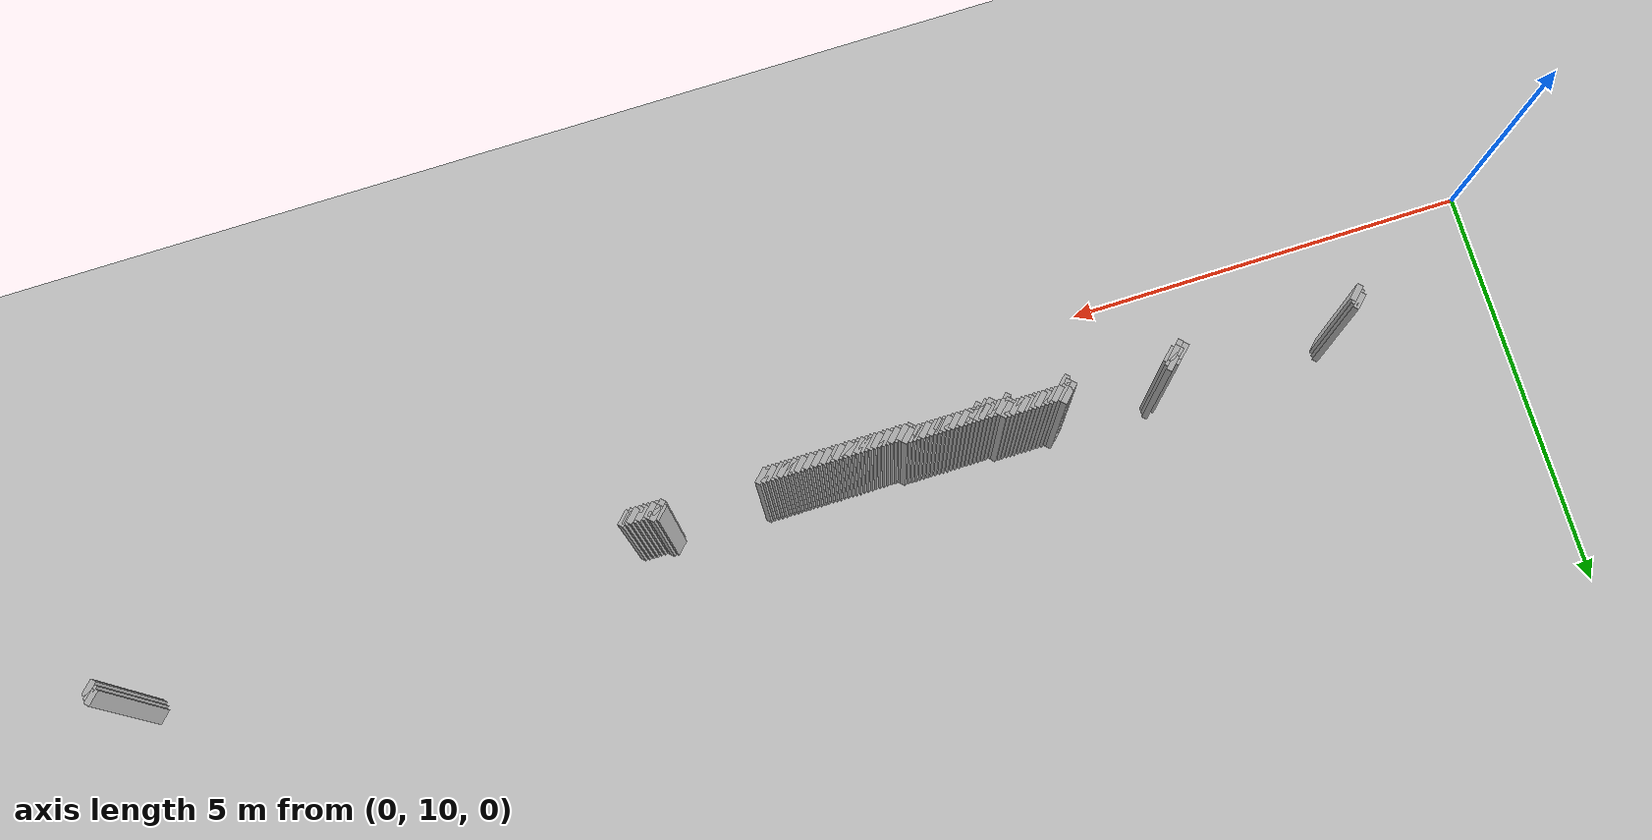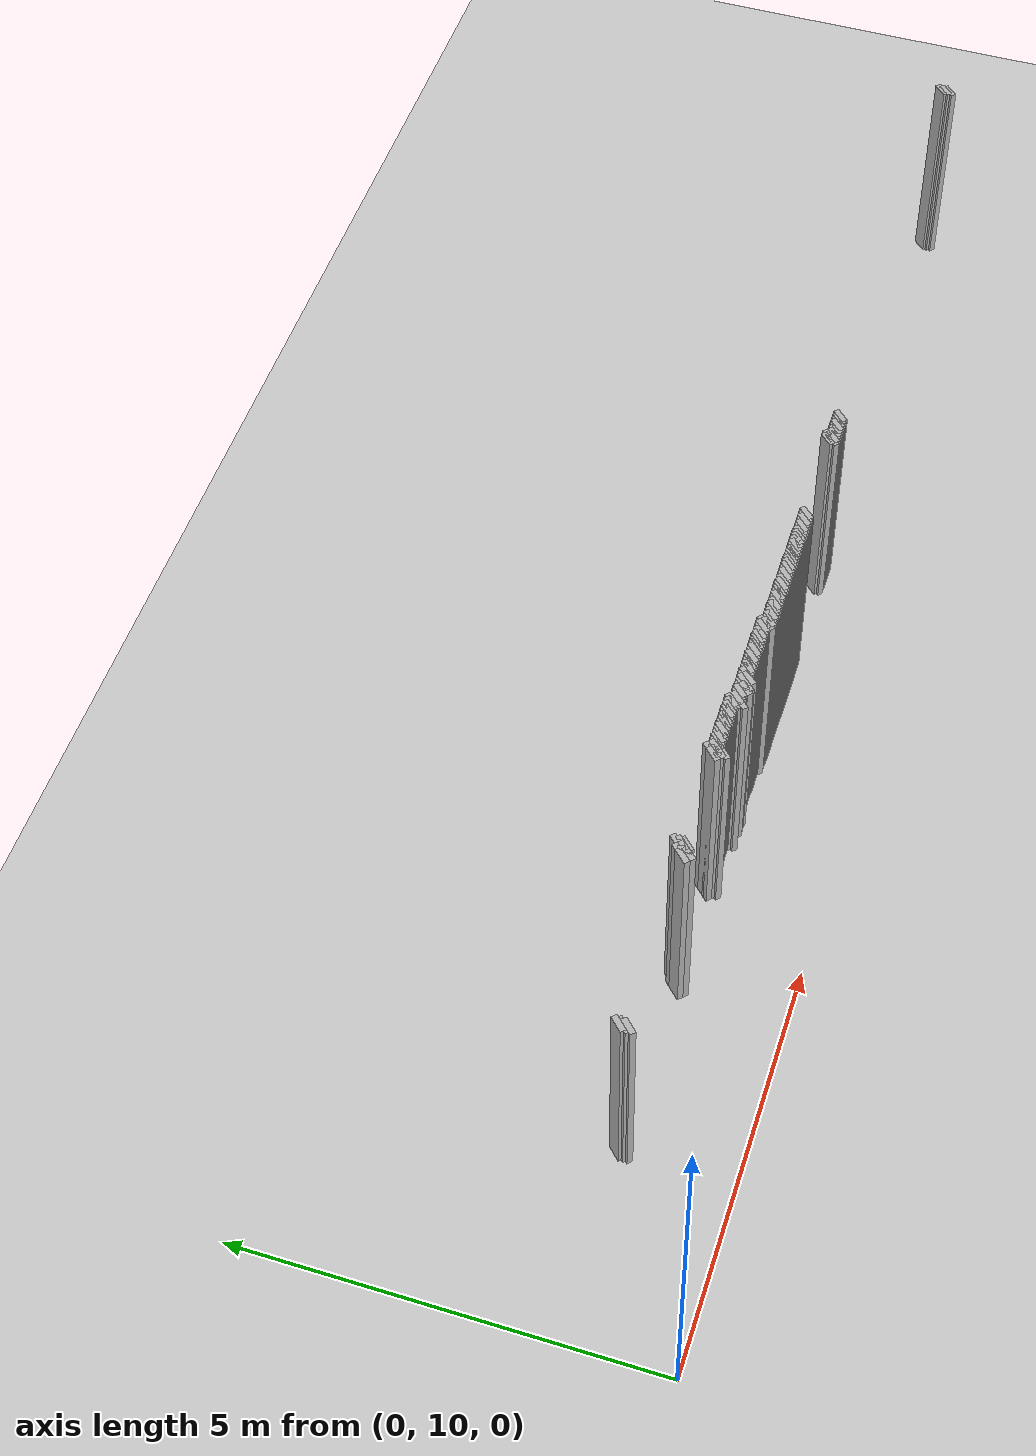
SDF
<sdf version="1.5">
 <world name="default">
  <include><uri>model://ground_plane</uri></include>
  <include><uri>model://sun</uri></include>
  <model name="grey_wall_1162">
   <static>1</static>
   <link name="link">
    <pose>4.5 11.4  1.4 0 0 -0.7853981633974483</pose>
    <collision name="collision">
     <geometry><box><size>0.07071067811865576 .2  2.8</size></box></geometry>
    </collision>
    <visual name="visual">
     <cast_shadows>0</cast_shadows>
     <geometry><box><size>0.07071067811865576 .2  2.8</size></box></geometry>
    </visual>
   </link>
  </model>
  <model name="grey_wall_1163">
   <static>1</static>
   <link name="link">
    <pose>5.75 11.4  1.4 0 0 -0.7853981633974483</pose>
    <collision name="collision">
     <geometry><box><size>0.07071067811865576 .2  2.8</size></box></geometry>
    </collision>
    <visual name="visual">
     <cast_shadows>0</cast_shadows>
     <geometry><box><size>0.07071067811865576 .2  2.8</size></box></geometry>
    </visual>
   </link>
  </model>
  <model name="grey_wall_1164">
   <static>1</static>
   <link name="link">
    <pose>17.05 11.4  1.4 0 0 -0.7853981633974838</pose>
    <collision name="collision">
     <geometry><box><size>0.07071067811865325 .2  2.8</size></box></geometry>
    </collision>
    <visual name="visual">
     <cast_shadows>0</cast_shadows>
     <geometry><box><size>0.07071067811865325 .2  2.8</size></box></geometry>
    </visual>
   </link>
  </model>
  <model name="grey_wall_1165">
   <static>1</static>
   <link name="link">
    <pose>2.25 11.350000000000001  1.4 0 0 -0.7853981633974572</pose>
    <collision name="collision">
     <geometry><box><size>0.07071067811865513 .2  2.8</size></box></geometry>
    </collision>
    <visual name="visual">
     <cast_shadows>0</cast_shadows>
     <geometry><box><size>0.07071067811865513 .2  2.8</size></box></geometry>
    </visual>
   </link>
  </model>
  <model name="grey_wall_1166">
   <static>1</static>
   <link name="link">
    <pose>4.4 11.350000000000001  1.4 0 0 -0.7853981633974483</pose>
    <collision name="collision">
     <geometry><box><size>0.07071067811865576 .2  2.8</size></box></geometry>
    </collision>
    <visual name="visual">
     <cast_shadows>0</cast_shadows>
     <geometry><box><size>0.07071067811865576 .2  2.8</size></box></geometry>
    </visual>
   </link>
  </model>
  <model name="grey_wall_1167">
   <static>1</static>
   <link name="link">
    <pose>4.5 11.350000000000001  1.4 0 0 -0.7853981633974483</pose>
    <collision name="collision">
     <geometry><box><size>0.07071067811865576 .2  2.8</size></box></geometry>
    </collision>
    <visual name="visual">
     <cast_shadows>0</cast_shadows>
     <geometry><box><size>0.07071067811865576 .2  2.8</size></box></geometry>
    </visual>
   </link>
  </model>
  <model name="grey_wall_1168">
   <static>1</static>
   <link name="link">
    <pose>5.7 11.350000000000001  1.4 0 0 -0.7853981633974483</pose>
    <collision name="collision">
     <geometry><box><size>0.07071067811865576 .2  2.8</size></box></geometry>
    </collision>
    <visual name="visual">
     <cast_shadows>0</cast_shadows>
     <geometry><box><size>0.07071067811865576 .2  2.8</size></box></geometry>
    </visual>
   </link>
  </model>
  <model name="grey_wall_1169">
   <static>1</static>
   <link name="link">
    <pose>5.75 11.350000000000001  1.4 0 0 -0.7853981633974483</pose>
    <collision name="collision">
     <geometry><box><size>0.07071067811865576 .2  2.8</size></box></geometry>
    </collision>
    <visual name="visual">
     <cast_shadows>0</cast_shadows>
     <geometry><box><size>0.07071067811865576 .2  2.8</size></box></geometry>
    </visual>
   </link>
  </model>
  <model name="grey_wall_1170">
   <static>1</static>
   <link name="link">
    <pose>5.800000000000001 11.350000000000001  1.4 0 0 -0.7853981633974483</pose>
    <collision name="collision">
     <geometry><box><size>0.07071067811865576 .2  2.8</size></box></geometry>
    </collision>
    <visual name="visual">
     <cast_shadows>0</cast_shadows>
     <geometry><box><size>0.07071067811865576 .2  2.8</size></box></geometry>
    </visual>
   </link>
  </model>
  <model name="grey_wall_1171">
   <static>1</static>
   <link name="link">
    <pose>5.8500000000000005 11.350000000000001  1.4 0 0 -0.7853981633974483</pose>
    <collision name="collision">
     <geometry><box><size>0.07071067811865576 .2  2.8</size></box></geometry>
    </collision>
    <visual name="visual">
     <cast_shadows>0</cast_shadows>
     <geometry><box><size>0.07071067811865576 .2  2.8</size></box></geometry>
    </visual>
   </link>
  </model>
  <model name="grey_wall_1172">
   <static>1</static>
   <link name="link">
    <pose>5.9 11.350000000000001  1.4 0 0 -0.7853981633974483</pose>
    <collision name="collision">
     <geometry><box><size>0.07071067811865576 .2  2.8</size></box></geometry>
    </collision>
    <visual name="visual">
     <cast_shadows>0</cast_shadows>
     <geometry><box><size>0.07071067811865576 .2  2.8</size></box></geometry>
    </visual>
   </link>
  </model>
  <model name="grey_wall_1173">
   <static>1</static>
   <link name="link">
    <pose>5.95 11.350000000000001  1.4 0 0 -0.7853981633974483</pose>
    <collision name="collision">
     <geometry><box><size>0.07071067811865576 .2  2.8</size></box></geometry>
    </collision>
    <visual name="visual">
     <cast_shadows>0</cast_shadows>
     <geometry><box><size>0.07071067811865576 .2  2.8</size></box></geometry>
    </visual>
   </link>
  </model>
  <model name="grey_wall_1174">
   <static>1</static>
   <link name="link">
    <pose>6.0 11.350000000000001  1.4 0 0 -0.7853981633974483</pose>
    <collision name="collision">
     <geometry><box><size>0.07071067811865576 .2  2.8</size></box></geometry>
    </collision>
    <visual name="visual">
     <cast_shadows>0</cast_shadows>
     <geometry><box><size>0.07071067811865576 .2  2.8</size></box></geometry>
    </visual>
   </link>
  </model>
  <model name="grey_wall_1175">
   <static>1</static>
   <link name="link">
    <pose>6.050000000000001 11.350000000000001  1.4 0 0 -0.7853981633974483</pose>
    <collision name="collision">
     <geometry><box><size>0.07071067811865576 .2  2.8</size></box></geometry>
    </collision>
    <visual name="visual">
     <cast_shadows>0</cast_shadows>
     <geometry><box><size>0.07071067811865576 .2  2.8</size></box></geometry>
    </visual>
   </link>
  </model>
  <model name="grey_wall_1176">
   <static>1</static>
   <link name="link">
    <pose>6.1000000000000005 11.350000000000001  1.4 0 0 -0.7853981633974483</pose>
    <collision name="collision">
     <geometry><box><size>0.07071067811865576 .2  2.8</size></box></geometry>
    </collision>
    <visual name="visual">
     <cast_shadows>0</cast_shadows>
     <geometry><box><size>0.07071067811865576 .2  2.8</size></box></geometry>
    </visual>
   </link>
  </model>
  <model name="grey_wall_1177">
   <static>1</static>
   <link name="link">
    <pose>6.15 11.350000000000001  1.4 0 0 -0.7853981633974483</pose>
    <collision name="collision">
     <geometry><box><size>0.07071067811865576 .2  2.8</size></box></geometry>
    </collision>
    <visual name="visual">
     <cast_shadows>0</cast_shadows>
     <geometry><box><size>0.07071067811865576 .2  2.8</size></box></geometry>
    </visual>
   </link>
  </model>
  <model name="grey_wall_1178">
   <static>1</static>
   <link name="link">
    <pose>6.2 11.350000000000001  1.4 0 0 -0.7853981633974483</pose>
    <collision name="collision">
     <geometry><box><size>0.07071067811865576 .2  2.8</size></box></geometry>
    </collision>
    <visual name="visual">
     <cast_shadows>0</cast_shadows>
     <geometry><box><size>0.07071067811865576 .2  2.8</size></box></geometry>
    </visual>
   </link>
  </model>
  <model name="grey_wall_1179">
   <static>1</static>
   <link name="link">
    <pose>6.25 11.350000000000001  1.4 0 0 -0.7853981633974483</pose>
    <collision name="collision">
     <geometry><box><size>0.07071067811865576 .2  2.8</size></box></geometry>
    </collision>
    <visual name="visual">
     <cast_shadows>0</cast_shadows>
     <geometry><box><size>0.07071067811865576 .2  2.8</size></box></geometry>
    </visual>
   </link>
  </model>
  <model name="grey_wall_1180">
   <static>1</static>
   <link name="link">
    <pose>6.300000000000001 11.350000000000001  1.4 0 0 -0.7853981633974483</pose>
    <collision name="collision">
     <geometry><box><size>0.07071067811865576 .2  2.8</size></box></geometry>
    </collision>
    <visual name="visual">
     <cast_shadows>0</cast_shadows>
     <geometry><box><size>0.07071067811865576 .2  2.8</size></box></geometry>
    </visual>
   </link>
  </model>
  <model name="grey_wall_1181">
   <static>1</static>
   <link name="link">
    <pose>6.3500000000000005 11.350000000000001  1.4 0 0 -0.7853981633974483</pose>
    <collision name="collision">
     <geometry><box><size>0.07071067811865576 .2  2.8</size></box></geometry>
    </collision>
    <visual name="visual">
     <cast_shadows>0</cast_shadows>
     <geometry><box><size>0.07071067811865576 .2  2.8</size></box></geometry>
    </visual>
   </link>
  </model>
  <model name="grey_wall_1182">
   <static>1</static>
   <link name="link">
    <pose>6.4 11.350000000000001  1.4 0 0 -0.7853981633974483</pose>
    <collision name="collision">
     <geometry><box><size>0.07071067811865576 .2  2.8</size></box></geometry>
    </collision>
    <visual name="visual">
     <cast_shadows>0</cast_shadows>
     <geometry><box><size>0.07071067811865576 .2  2.8</size></box></geometry>
    </visual>
   </link>
  </model>
  <model name="grey_wall_1183">
   <static>1</static>
   <link name="link">
    <pose>6.45 11.350000000000001  1.4 0 0 -0.7853981633974483</pose>
    <collision name="collision">
     <geometry><box><size>0.07071067811865576 .2  2.8</size></box></geometry>
    </collision>
    <visual name="visual">
     <cast_shadows>0</cast_shadows>
     <geometry><box><size>0.07071067811865576 .2  2.8</size></box></geometry>
    </visual>
   </link>
  </model>
  <model name="grey_wall_1184">
   <static>1</static>
   <link name="link">
    <pose>17.05 11.350000000000001  1.4 0 0 -0.7853981633974838</pose>
    <collision name="collision">
     <geometry><box><size>0.07071067811865325 .2  2.8</size></box></geometry>
    </collision>
    <visual name="visual">
     <cast_shadows>0</cast_shadows>
     <geometry><box><size>0.07071067811865325 .2  2.8</size></box></geometry>
    </visual>
   </link>
  </model>
  <model name="grey_wall_1185">
   <static>1</static>
   <link name="link">
    <pose>2.25 11.3  1.4 0 0 -0.7853981633974572</pose>
    <collision name="collision">
     <geometry><box><size>0.07071067811865513 .2  2.8</size></box></geometry>
    </collision>
    <visual name="visual">
     <cast_shadows>0</cast_shadows>
     <geometry><box><size>0.07071067811865513 .2  2.8</size></box></geometry>
    </visual>
   </link>
  </model>
  <model name="grey_wall_1186">
   <static>1</static>
   <link name="link">
    <pose>4.3500000000000005 11.3  1.4 0 0 -0.7853981633974483</pose>
    <collision name="collision">
     <geometry><box><size>0.07071067811865576 .2  2.8</size></box></geometry>
    </collision>
    <visual name="visual">
     <cast_shadows>0</cast_shadows>
     <geometry><box><size>0.07071067811865576 .2  2.8</size></box></geometry>
    </visual>
   </link>
  </model>
  <model name="grey_wall_1187">
   <static>1</static>
   <link name="link">
    <pose>4.4 11.3  1.4 0 0 -0.7853981633974483</pose>
    <collision name="collision">
     <geometry><box><size>0.07071067811865576 .2  2.8</size></box></geometry>
    </collision>
    <visual name="visual">
     <cast_shadows>0</cast_shadows>
     <geometry><box><size>0.07071067811865576 .2  2.8</size></box></geometry>
    </visual>
   </link>
  </model>
  <model name="grey_wall_1188">
   <static>1</static>
   <link name="link">
    <pose>4.45 11.3  1.4 0 0 -0.7853981633974483</pose>
    <collision name="collision">
     <geometry><box><size>0.07071067811865576 .2  2.8</size></box></geometry>
    </collision>
    <visual name="visual">
     <cast_shadows>0</cast_shadows>
     <geometry><box><size>0.07071067811865576 .2  2.8</size></box></geometry>
    </visual>
   </link>
  </model>
  <model name="grey_wall_1189">
   <static>1</static>
   <link name="link">
    <pose>4.5 11.3  1.4 0 0 -0.7853981633974483</pose>
    <collision name="collision">
     <geometry><box><size>0.07071067811865576 .2  2.8</size></box></geometry>
    </collision>
    <visual name="visual">
     <cast_shadows>0</cast_shadows>
     <geometry><box><size>0.07071067811865576 .2  2.8</size></box></geometry>
    </visual>
   </link>
  </model>
  <model name="grey_wall_1190">
   <static>1</static>
   <link name="link">
    <pose>5.75 11.3  1.4 0 0 -0.7853981633974483</pose>
    <collision name="collision">
     <geometry><box><size>0.07071067811865576 .2  2.8</size></box></geometry>
    </collision>
    <visual name="visual">
     <cast_shadows>0</cast_shadows>
     <geometry><box><size>0.07071067811865576 .2  2.8</size></box></geometry>
    </visual>
   </link>
  </model>
  <model name="grey_wall_1191">
   <static>1</static>
   <link name="link">
    <pose>6.45 11.3  1.4 0 0 -0.7853981633974483</pose>
    <collision name="collision">
     <geometry><box><size>0.07071067811865576 .2  2.8</size></box></geometry>
    </collision>
    <visual name="visual">
     <cast_shadows>0</cast_shadows>
     <geometry><box><size>0.07071067811865576 .2  2.8</size></box></geometry>
    </visual>
   </link>
  </model>
  <model name="grey_wall_1192">
   <static>1</static>
   <link name="link">
    <pose>6.5 11.3  1.4 0 0 -0.7853981633974483</pose>
    <collision name="collision">
     <geometry><box><size>0.07071067811865576 .2  2.8</size></box></geometry>
    </collision>
    <visual name="visual">
     <cast_shadows>0</cast_shadows>
     <geometry><box><size>0.07071067811865576 .2  2.8</size></box></geometry>
    </visual>
   </link>
  </model>
  <model name="grey_wall_1193">
   <static>1</static>
   <link name="link">
    <pose>6.550000000000001 11.3  1.4 0 0 -0.7853981633974483</pose>
    <collision name="collision">
     <geometry><box><size>0.07071067811865576 .2  2.8</size></box></geometry>
    </collision>
    <visual name="visual">
     <cast_shadows>0</cast_shadows>
     <geometry><box><size>0.07071067811865576 .2  2.8</size></box></geometry>
    </visual>
   </link>
  </model>
  <model name="grey_wall_1194">
   <static>1</static>
   <link name="link">
    <pose>6.6000000000000005 11.3  1.4 0 0 -0.7853981633974483</pose>
    <collision name="collision">
     <geometry><box><size>0.07071067811865576 .2  2.8</size></box></geometry>
    </collision>
    <visual name="visual">
     <cast_shadows>0</cast_shadows>
     <geometry><box><size>0.07071067811865576 .2  2.8</size></box></geometry>
    </visual>
   </link>
  </model>
  <model name="grey_wall_1195">
   <static>1</static>
   <link name="link">
    <pose>6.65 11.3  1.4 0 0 -0.7853981633974483</pose>
    <collision name="collision">
     <geometry><box><size>0.07071067811865576 .2  2.8</size></box></geometry>
    </collision>
    <visual name="visual">
     <cast_shadows>0</cast_shadows>
     <geometry><box><size>0.07071067811865576 .2  2.8</size></box></geometry>
    </visual>
   </link>
  </model>
  <model name="grey_wall_1196">
   <static>1</static>
   <link name="link">
    <pose>6.7 11.3  1.4 0 0 -0.7853981633974483</pose>
    <collision name="collision">
     <geometry><box><size>0.07071067811865576 .2  2.8</size></box></geometry>
    </collision>
    <visual name="visual">
     <cast_shadows>0</cast_shadows>
     <geometry><box><size>0.07071067811865576 .2  2.8</size></box></geometry>
    </visual>
   </link>
  </model>
  <model name="grey_wall_1197">
   <static>1</static>
   <link name="link">
    <pose>6.75 11.3  1.4 0 0 -0.7853981633974483</pose>
    <collision name="collision">
     <geometry><box><size>0.07071067811865576 .2  2.8</size></box></geometry>
    </collision>
    <visual name="visual">
     <cast_shadows>0</cast_shadows>
     <geometry><box><size>0.07071067811865576 .2  2.8</size></box></geometry>
    </visual>
   </link>
  </model>
  <model name="grey_wall_1198">
   <static>1</static>
   <link name="link">
    <pose>6.800000000000001 11.3  1.4 0 0 -0.7853981633974483</pose>
    <collision name="collision">
     <geometry><box><size>0.07071067811865576 .2  2.8</size></box></geometry>
    </collision>
    <visual name="visual">
     <cast_shadows>0</cast_shadows>
     <geometry><box><size>0.07071067811865576 .2  2.8</size></box></geometry>
    </visual>
   </link>
  </model>
  <model name="grey_wall_1199">
   <static>1</static>
   <link name="link">
    <pose>6.8500000000000005 11.3  1.4 0 0 -0.7853981633974483</pose>
    <collision name="collision">
     <geometry><box><size>0.07071067811865576 .2  2.8</size></box></geometry>
    </collision>
    <visual name="visual">
     <cast_shadows>0</cast_shadows>
     <geometry><box><size>0.07071067811865576 .2  2.8</size></box></geometry>
    </visual>
   </link>
  </model>
  <model name="grey_wall_1200">
   <static>1</static>
   <link name="link">
    <pose>6.9 11.3  1.4 0 0 -0.7853981633974483</pose>
    <collision name="collision">
     <geometry><box><size>0.07071067811865576 .2  2.8</size></box></geometry>
    </collision>
    <visual name="visual">
     <cast_shadows>0</cast_shadows>
     <geometry><box><size>0.07071067811865576 .2  2.8</size></box></geometry>
    </visual>
   </link>
  </model>
  <model name="grey_wall_1201">
   <static>1</static>
   <link name="link">
    <pose>6.95 11.3  1.4 0 0 -0.7853981633974483</pose>
    <collision name="collision">
     <geometry><box><size>0.07071067811865576 .2  2.8</size></box></geometry>
    </collision>
    <visual name="visual">
     <cast_shadows>0</cast_shadows>
     <geometry><box><size>0.07071067811865576 .2  2.8</size></box></geometry>
    </visual>
   </link>
  </model>
  <model name="grey_wall_1202">
   <static>1</static>
   <link name="link">
    <pose>7.0 11.3  1.4 0 0 -0.7853981633974483</pose>
    <collision name="collision">
     <geometry><box><size>0.07071067811865576 .2  2.8</size></box></geometry>
    </collision>
    <visual name="visual">
     <cast_shadows>0</cast_shadows>
     <geometry><box><size>0.07071067811865576 .2  2.8</size></box></geometry>
    </visual>
   </link>
  </model>
  <model name="grey_wall_1203">
   <static>1</static>
   <link name="link">
    <pose>7.050000000000001 11.3  1.4 0 0 -0.7853981633974483</pose>
    <collision name="collision">
     <geometry><box><size>0.07071067811865576 .2  2.8</size></box></geometry>
    </collision>
    <visual name="visual">
     <cast_shadows>0</cast_shadows>
     <geometry><box><size>0.07071067811865576 .2  2.8</size></box></geometry>
    </visual>
   </link>
  </model>
  <model name="grey_wall_1204">
   <static>1</static>
   <link name="link">
    <pose>7.1000000000000005 11.3  1.4 0 0 -0.7853981633974483</pose>
    <collision name="collision">
     <geometry><box><size>0.07071067811865576 .2  2.8</size></box></geometry>
    </collision>
    <visual name="visual">
     <cast_shadows>0</cast_shadows>
     <geometry><box><size>0.07071067811865576 .2  2.8</size></box></geometry>
    </visual>
   </link>
  </model>
  <model name="grey_wall_1205">
   <static>1</static>
   <link name="link">
    <pose>7.15 11.3  1.4 0 0 -0.7853981633974483</pose>
    <collision name="collision">
     <geometry><box><size>0.07071067811865576 .2  2.8</size></box></geometry>
    </collision>
    <visual name="visual">
     <cast_shadows>0</cast_shadows>
     <geometry><box><size>0.07071067811865576 .2  2.8</size></box></geometry>
    </visual>
   </link>
  </model>
  <model name="grey_wall_1206">
   <static>1</static>
   <link name="link">
    <pose>7.2 11.3  1.4 0 0 -0.7853981633974483</pose>
    <collision name="collision">
     <geometry><box><size>0.07071067811865576 .2  2.8</size></box></geometry>
    </collision>
    <visual name="visual">
     <cast_shadows>0</cast_shadows>
     <geometry><box><size>0.07071067811865576 .2  2.8</size></box></geometry>
    </visual>
   </link>
  </model>
  <model name="grey_wall_1207">
   <static>1</static>
   <link name="link">
    <pose>7.25 11.3  1.4 0 0 -0.7853981633974483</pose>
    <collision name="collision">
     <geometry><box><size>0.07071067811865576 .2  2.8</size></box></geometry>
    </collision>
    <visual name="visual">
     <cast_shadows>0</cast_shadows>
     <geometry><box><size>0.07071067811865576 .2  2.8</size></box></geometry>
    </visual>
   </link>
  </model>
  <model name="grey_wall_1208">
   <static>1</static>
   <link name="link">
    <pose>7.300000000000001 11.3  1.4 0 0 -0.7853981633974483</pose>
    <collision name="collision">
     <geometry><box><size>0.07071067811865576 .2  2.8</size></box></geometry>
    </collision>
    <visual name="visual">
     <cast_shadows>0</cast_shadows>
     <geometry><box><size>0.07071067811865576 .2  2.8</size></box></geometry>
    </visual>
   </link>
  </model>
  <model name="grey_wall_1209">
   <static>1</static>
   <link name="link">
    <pose>7.3500000000000005 11.3  1.4 0 0 -0.7853981633974483</pose>
    <collision name="collision">
     <geometry><box><size>0.07071067811865576 .2  2.8</size></box></geometry>
    </collision>
    <visual name="visual">
     <cast_shadows>0</cast_shadows>
     <geometry><box><size>0.07071067811865576 .2  2.8</size></box></geometry>
    </visual>
   </link>
  </model>
  <model name="grey_wall_1210">
   <static>1</static>
   <link name="link">
    <pose>7.4 11.3  1.4 0 0 -0.7853981633974483</pose>
    <collision name="collision">
     <geometry><box><size>0.07071067811865576 .2  2.8</size></box></geometry>
    </collision>
    <visual name="visual">
     <cast_shadows>0</cast_shadows>
     <geometry><box><size>0.07071067811865576 .2  2.8</size></box></geometry>
    </visual>
   </link>
  </model>
  <model name="grey_wall_1211">
   <static>1</static>
   <link name="link">
    <pose>7.45 11.3  1.4 0 0 -0.7853981633974483</pose>
    <collision name="collision">
     <geometry><box><size>0.07071067811865576 .2  2.8</size></box></geometry>
    </collision>
    <visual name="visual">
     <cast_shadows>0</cast_shadows>
     <geometry><box><size>0.07071067811865576 .2  2.8</size></box></geometry>
    </visual>
   </link>
  </model>
  <model name="grey_wall_1212">
   <static>1</static>
   <link name="link">
    <pose>7.5 11.3  1.4 0 0 -0.7853981633974483</pose>
    <collision name="collision">
     <geometry><box><size>0.07071067811865576 .2  2.8</size></box></geometry>
    </collision>
    <visual name="visual">
     <cast_shadows>0</cast_shadows>
     <geometry><box><size>0.07071067811865576 .2  2.8</size></box></geometry>
    </visual>
   </link>
  </model>
  <model name="grey_wall_1213">
   <static>1</static>
   <link name="link">
    <pose>7.550000000000001 11.3  1.4 0 0 -0.7853981633974483</pose>
    <collision name="collision">
     <geometry><box><size>0.07071067811865576 .2  2.8</size></box></geometry>
    </collision>
    <visual name="visual">
     <cast_shadows>0</cast_shadows>
     <geometry><box><size>0.07071067811865576 .2  2.8</size></box></geometry>
    </visual>
   </link>
  </model>
  <model name="grey_wall_1214">
   <static>1</static>
   <link name="link">
    <pose>7.6000000000000005 11.3  1.4 0 0 -0.7853981633974483</pose>
    <collision name="collision">
     <geometry><box><size>0.07071067811865576 .2  2.8</size></box></geometry>
    </collision>
    <visual name="visual">
     <cast_shadows>0</cast_shadows>
     <geometry><box><size>0.07071067811865576 .2  2.8</size></box></geometry>
    </visual>
   </link>
  </model>
  <model name="grey_wall_1215">
   <static>1</static>
   <link name="link">
    <pose>10.5 11.3  1.4 0 0 -0.7853981633974483</pose>
    <collision name="collision">
     <geometry><box><size>0.07071067811865576 .2  2.8</size></box></geometry>
    </collision>
    <visual name="visual">
     <cast_shadows>0</cast_shadows>
     <geometry><box><size>0.07071067811865576 .2  2.8</size></box></geometry>
    </visual>
   </link>
  </model>
  <model name="grey_wall_1216">
   <static>1</static>
   <link name="link">
    <pose>10.55 11.3  1.4 0 0 -0.7853981633974483</pose>
    <collision name="collision">
     <geometry><box><size>0.07071067811865576 .2  2.8</size></box></geometry>
    </collision>
    <visual name="visual">
     <cast_shadows>0</cast_shadows>
     <geometry><box><size>0.07071067811865576 .2  2.8</size></box></geometry>
    </visual>
   </link>
  </model>
  <model name="grey_wall_1217">
   <static>1</static>
   <link name="link">
    <pose>17.05 11.3  1.4 0 0 -0.7853981633974838</pose>
    <collision name="collision">
     <geometry><box><size>0.07071067811865325 .2  2.8</size></box></geometry>
    </collision>
    <visual name="visual">
     <cast_shadows>0</cast_shadows>
     <geometry><box><size>0.07071067811865325 .2  2.8</size></box></geometry>
    </visual>
   </link>
  </model>
  <model name="grey_wall_1218">
   <static>1</static>
   <link name="link">
    <pose>2.25 11.25  1.4 0 0 -0.7853981633974572</pose>
    <collision name="collision">
     <geometry><box><size>0.07071067811865513 .2  2.8</size></box></geometry>
    </collision>
    <visual name="visual">
     <cast_shadows>0</cast_shadows>
     <geometry><box><size>0.07071067811865513 .2  2.8</size></box></geometry>
    </visual>
   </link>
  </model>
  <model name="grey_wall_1219">
   <static>1</static>
   <link name="link">
    <pose>4.4 11.25  1.4 0 0 -0.7853981633974483</pose>
    <collision name="collision">
     <geometry><box><size>0.07071067811865576 .2  2.8</size></box></geometry>
    </collision>
    <visual name="visual">
     <cast_shadows>0</cast_shadows>
     <geometry><box><size>0.07071067811865576 .2  2.8</size></box></geometry>
    </visual>
   </link>
  </model>
  <model name="grey_wall_1220">
   <static>1</static>
   <link name="link">
    <pose>5.75 11.25  1.4 0 0 -0.7853981633974483</pose>
    <collision name="collision">
     <geometry><box><size>0.07071067811865576 .2  2.8</size></box></geometry>
    </collision>
    <visual name="visual">
     <cast_shadows>0</cast_shadows>
     <geometry><box><size>0.07071067811865576 .2  2.8</size></box></geometry>
    </visual>
   </link>
  </model>
  <model name="grey_wall_1221">
   <static>1</static>
   <link name="link">
    <pose>6.45 11.25  1.4 0 0 -0.7853981633974483</pose>
    <collision name="collision">
     <geometry><box><size>0.07071067811865576 .2  2.8</size></box></geometry>
    </collision>
    <visual name="visual">
     <cast_shadows>0</cast_shadows>
     <geometry><box><size>0.07071067811865576 .2  2.8</size></box></geometry>
    </visual>
   </link>
  </model>
  <model name="grey_wall_1222">
   <static>1</static>
   <link name="link">
    <pose>6.65 11.25  1.4 0 0 -0.7853981633974483</pose>
    <collision name="collision">
     <geometry><box><size>0.07071067811865576 .2  2.8</size></box></geometry>
    </collision>
    <visual name="visual">
     <cast_shadows>0</cast_shadows>
     <geometry><box><size>0.07071067811865576 .2  2.8</size></box></geometry>
    </visual>
   </link>
  </model>
  <model name="grey_wall_1223">
   <static>1</static>
   <link name="link">
    <pose>6.7 11.25  1.4 0 0 -0.7853981633974483</pose>
    <collision name="collision">
     <geometry><box><size>0.07071067811865576 .2  2.8</size></box></geometry>
    </collision>
    <visual name="visual">
     <cast_shadows>0</cast_shadows>
     <geometry><box><size>0.07071067811865576 .2  2.8</size></box></geometry>
    </visual>
   </link>
  </model>
  <model name="grey_wall_1224">
   <static>1</static>
   <link name="link">
    <pose>6.800000000000001 11.25  1.4 0 0 -0.7853981633974483</pose>
    <collision name="collision">
     <geometry><box><size>0.07071067811865576 .2  2.8</size></box></geometry>
    </collision>
    <visual name="visual">
     <cast_shadows>0</cast_shadows>
     <geometry><box><size>0.07071067811865576 .2  2.8</size></box></geometry>
    </visual>
   </link>
  </model>
  <model name="grey_wall_1225">
   <static>1</static>
   <link name="link">
    <pose>7.6000000000000005 11.25  1.4 0 0 -0.7853981633974483</pose>
    <collision name="collision">
     <geometry><box><size>0.07071067811865576 .2  2.8</size></box></geometry>
    </collision>
    <visual name="visual">
     <cast_shadows>0</cast_shadows>
     <geometry><box><size>0.07071067811865576 .2  2.8</size></box></geometry>
    </visual>
   </link>
  </model>
  <model name="grey_wall_1226">
   <static>1</static>
   <link name="link">
    <pose>7.65 11.25  1.4 0 0 -0.7853981633974483</pose>
    <collision name="collision">
     <geometry><box><size>0.07071067811865576 .2  2.8</size></box></geometry>
    </collision>
    <visual name="visual">
     <cast_shadows>0</cast_shadows>
     <geometry><box><size>0.07071067811865576 .2  2.8</size></box></geometry>
    </visual>
   </link>
  </model>
  <model name="grey_wall_1227">
   <static>1</static>
   <link name="link">
    <pose>7.7 11.25  1.4 0 0 -0.7853981633974483</pose>
    <collision name="collision">
     <geometry><box><size>0.07071067811865576 .2  2.8</size></box></geometry>
    </collision>
    <visual name="visual">
     <cast_shadows>0</cast_shadows>
     <geometry><box><size>0.07071067811865576 .2  2.8</size></box></geometry>
    </visual>
   </link>
  </model>
  <model name="grey_wall_1228">
   <static>1</static>
   <link name="link">
    <pose>7.75 11.25  1.4 0 0 -0.7853981633974483</pose>
    <collision name="collision">
     <geometry><box><size>0.07071067811865576 .2  2.8</size></box></geometry>
    </collision>
    <visual name="visual">
     <cast_shadows>0</cast_shadows>
     <geometry><box><size>0.07071067811865576 .2  2.8</size></box></geometry>
    </visual>
   </link>
  </model>
  <model name="grey_wall_1229">
   <static>1</static>
   <link name="link">
    <pose>7.800000000000001 11.25  1.4 0 0 -0.7853981633974483</pose>
    <collision name="collision">
     <geometry><box><size>0.07071067811865576 .2  2.8</size></box></geometry>
    </collision>
    <visual name="visual">
     <cast_shadows>0</cast_shadows>
     <geometry><box><size>0.07071067811865576 .2  2.8</size></box></geometry>
    </visual>
   </link>
  </model>
  <model name="grey_wall_1230">
   <static>1</static>
   <link name="link">
    <pose>7.8500000000000005 11.25  1.4 0 0 -0.7853981633974483</pose>
    <collision name="collision">
     <geometry><box><size>0.07071067811865576 .2  2.8</size></box></geometry>
    </collision>
    <visual name="visual">
     <cast_shadows>0</cast_shadows>
     <geometry><box><size>0.07071067811865576 .2  2.8</size></box></geometry>
    </visual>
   </link>
  </model>
  <model name="grey_wall_1231">
   <static>1</static>
   <link name="link">
    <pose>7.9 11.25  1.4 0 0 -0.7853981633974483</pose>
    <collision name="collision">
     <geometry><box><size>0.07071067811865576 .2  2.8</size></box></geometry>
    </collision>
    <visual name="visual">
     <cast_shadows>0</cast_shadows>
     <geometry><box><size>0.07071067811865576 .2  2.8</size></box></geometry>
    </visual>
   </link>
  </model>
  <model name="grey_wall_1232">
   <static>1</static>
   <link name="link">
    <pose>7.95 11.25  1.4 0 0 -0.7853981633974483</pose>
    <collision name="collision">
     <geometry><box><size>0.07071067811865576 .2  2.8</size></box></geometry>
    </collision>
    <visual name="visual">
     <cast_shadows>0</cast_shadows>
     <geometry><box><size>0.07071067811865576 .2  2.8</size></box></geometry>
    </visual>
   </link>
  </model>
  <model name="grey_wall_1233">
   <static>1</static>
   <link name="link">
    <pose>8.0 11.25  1.4 0 0 -0.7853981633974483</pose>
    <collision name="collision">
     <geometry><box><size>0.07071067811865576 .2  2.8</size></box></geometry>
    </collision>
    <visual name="visual">
     <cast_shadows>0</cast_shadows>
     <geometry><box><size>0.07071067811865576 .2  2.8</size></box></geometry>
    </visual>
   </link>
  </model>
  <model name="grey_wall_1234">
   <static>1</static>
   <link name="link">
    <pose>8.05 11.25  1.4 0 0 -0.7853981633974483</pose>
    <collision name="collision">
     <geometry><box><size>0.07071067811865576 .2  2.8</size></box></geometry>
    </collision>
    <visual name="visual">
     <cast_shadows>0</cast_shadows>
     <geometry><box><size>0.07071067811865576 .2  2.8</size></box></geometry>
    </visual>
   </link>
  </model>
  <model name="grey_wall_1235">
   <static>1</static>
   <link name="link">
    <pose>8.1 11.25  1.4 0 0 -0.7853981633974483</pose>
    <collision name="collision">
     <geometry><box><size>0.07071067811865576 .2  2.8</size></box></geometry>
    </collision>
    <visual name="visual">
     <cast_shadows>0</cast_shadows>
     <geometry><box><size>0.07071067811865576 .2  2.8</size></box></geometry>
    </visual>
   </link>
  </model>
  <model name="grey_wall_1236">
   <static>1</static>
   <link name="link">
    <pose>8.15 11.25  1.4 0 0 -0.7853981633974483</pose>
    <collision name="collision">
     <geometry><box><size>0.07071067811865576 .2  2.8</size></box></geometry>
    </collision>
    <visual name="visual">
     <cast_shadows>0</cast_shadows>
     <geometry><box><size>0.07071067811865576 .2  2.8</size></box></geometry>
    </visual>
   </link>
  </model>
  <model name="grey_wall_1237">
   <static>1</static>
   <link name="link">
    <pose>8.200000000000001 11.25  1.4 0 0 -0.7853981633974483</pose>
    <collision name="collision">
     <geometry><box><size>0.07071067811865576 .2  2.8</size></box></geometry>
    </collision>
    <visual name="visual">
     <cast_shadows>0</cast_shadows>
     <geometry><box><size>0.07071067811865576 .2  2.8</size></box></geometry>
    </visual>
   </link>
  </model>
  <model name="grey_wall_1238">
   <static>1</static>
   <link name="link">
    <pose>8.25 11.25  1.4 0 0 -0.7853981633974483</pose>
    <collision name="collision">
     <geometry><box><size>0.07071067811865576 .2  2.8</size></box></geometry>
    </collision>
    <visual name="visual">
     <cast_shadows>0</cast_shadows>
     <geometry><box><size>0.07071067811865576 .2  2.8</size></box></geometry>
    </visual>
   </link>
  </model>
  <model name="grey_wall_1239">
   <static>1</static>
   <link name="link">
    <pose>8.3 11.25  1.4 0 0 -0.7853981633974483</pose>
    <collision name="collision">
     <geometry><box><size>0.07071067811865576 .2  2.8</size></box></geometry>
    </collision>
    <visual name="visual">
     <cast_shadows>0</cast_shadows>
     <geometry><box><size>0.07071067811865576 .2  2.8</size></box></geometry>
    </visual>
   </link>
  </model>
  <model name="grey_wall_1240">
   <static>1</static>
   <link name="link">
    <pose>8.35 11.25  1.4 0 0 -0.7853981633974483</pose>
    <collision name="collision">
     <geometry><box><size>0.07071067811865576 .2  2.8</size></box></geometry>
    </collision>
    <visual name="visual">
     <cast_shadows>0</cast_shadows>
     <geometry><box><size>0.07071067811865576 .2  2.8</size></box></geometry>
    </visual>
   </link>
  </model>
  <model name="grey_wall_1241">
   <static>1</static>
   <link name="link">
    <pose>8.4 11.25  1.4 0 0 -0.7853981633974483</pose>
    <collision name="collision">
     <geometry><box><size>0.07071067811865576 .2  2.8</size></box></geometry>
    </collision>
    <visual name="visual">
     <cast_shadows>0</cast_shadows>
     <geometry><box><size>0.07071067811865576 .2  2.8</size></box></geometry>
    </visual>
   </link>
  </model>
  <model name="grey_wall_1242">
   <static>1</static>
   <link name="link">
    <pose>8.450000000000001 11.25  1.4 0 0 -0.7853981633974483</pose>
    <collision name="collision">
     <geometry><box><size>0.07071067811865576 .2  2.8</size></box></geometry>
    </collision>
    <visual name="visual">
     <cast_shadows>0</cast_shadows>
     <geometry><box><size>0.07071067811865576 .2  2.8</size></box></geometry>
    </visual>
   </link>
  </model>
  <model name="grey_wall_1243">
   <static>1</static>
   <link name="link">
    <pose>8.5 11.25  1.4 0 0 -0.7853981633974483</pose>
    <collision name="collision">
     <geometry><box><size>0.07071067811865576 .2  2.8</size></box></geometry>
    </collision>
    <visual name="visual">
     <cast_shadows>0</cast_shadows>
     <geometry><box><size>0.07071067811865576 .2  2.8</size></box></geometry>
    </visual>
   </link>
  </model>
  <model name="grey_wall_1244">
   <static>1</static>
   <link name="link">
    <pose>8.55 11.25  1.4 0 0 -0.7853981633974483</pose>
    <collision name="collision">
     <geometry><box><size>0.07071067811865576 .2  2.8</size></box></geometry>
    </collision>
    <visual name="visual">
     <cast_shadows>0</cast_shadows>
     <geometry><box><size>0.07071067811865576 .2  2.8</size></box></geometry>
    </visual>
   </link>
  </model>
  <model name="grey_wall_1245">
   <static>1</static>
   <link name="link">
    <pose>8.6 11.25  1.4 0 0 -0.7853981633974483</pose>
    <collision name="collision">
     <geometry><box><size>0.07071067811865576 .2  2.8</size></box></geometry>
    </collision>
    <visual name="visual">
     <cast_shadows>0</cast_shadows>
     <geometry><box><size>0.07071067811865576 .2  2.8</size></box></geometry>
    </visual>
   </link>
  </model>
  <model name="grey_wall_1246">
   <static>1</static>
   <link name="link">
    <pose>8.65 11.25  1.4 0 0 -0.7853981633974483</pose>
    <collision name="collision">
     <geometry><box><size>0.07071067811865576 .2  2.8</size></box></geometry>
    </collision>
    <visual name="visual">
     <cast_shadows>0</cast_shadows>
     <geometry><box><size>0.07071067811865576 .2  2.8</size></box></geometry>
    </visual>
   </link>
  </model>
  <model name="grey_wall_1247">
   <static>1</static>
   <link name="link">
    <pose>8.700000000000001 11.25  1.4 0 0 -0.7853981633974483</pose>
    <collision name="collision">
     <geometry><box><size>0.07071067811865576 .2  2.8</size></box></geometry>
    </collision>
    <visual name="visual">
     <cast_shadows>0</cast_shadows>
     <geometry><box><size>0.07071067811865576 .2  2.8</size></box></geometry>
    </visual>
   </link>
  </model>
  <model name="grey_wall_1248">
   <static>1</static>
   <link name="link">
    <pose>8.75 11.25  1.4 0 0 -0.7853981633974483</pose>
    <collision name="collision">
     <geometry><box><size>0.07071067811865576 .2  2.8</size></box></geometry>
    </collision>
    <visual name="visual">
     <cast_shadows>0</cast_shadows>
     <geometry><box><size>0.07071067811865576 .2  2.8</size></box></geometry>
    </visual>
   </link>
  </model>
  <model name="grey_wall_1249">
   <static>1</static>
   <link name="link">
    <pose>8.8 11.25  1.4 0 0 -0.7853981633974483</pose>
    <collision name="collision">
     <geometry><box><size>0.07071067811865576 .2  2.8</size></box></geometry>
    </collision>
    <visual name="visual">
     <cast_shadows>0</cast_shadows>
     <geometry><box><size>0.07071067811865576 .2  2.8</size></box></geometry>
    </visual>
   </link>
  </model>
  <model name="grey_wall_1250">
   <static>1</static>
   <link name="link">
    <pose>8.85 11.25  1.4 0 0 -0.7853981633974483</pose>
    <collision name="collision">
     <geometry><box><size>0.07071067811865576 .2  2.8</size></box></geometry>
    </collision>
    <visual name="visual">
     <cast_shadows>0</cast_shadows>
     <geometry><box><size>0.07071067811865576 .2  2.8</size></box></geometry>
    </visual>
   </link>
  </model>
  <model name="grey_wall_1251">
   <static>1</static>
   <link name="link">
    <pose>8.9 11.25  1.4 0 0 -0.7853981633974483</pose>
    <collision name="collision">
     <geometry><box><size>0.07071067811865576 .2  2.8</size></box></geometry>
    </collision>
    <visual name="visual">
     <cast_shadows>0</cast_shadows>
     <geometry><box><size>0.07071067811865576 .2  2.8</size></box></geometry>
    </visual>
   </link>
  </model>
  <model name="grey_wall_1252">
   <static>1</static>
   <link name="link">
    <pose>8.950000000000001 11.25  1.4 0 0 -0.7853981633974483</pose>
    <collision name="collision">
     <geometry><box><size>0.07071067811865576 .2  2.8</size></box></geometry>
    </collision>
    <visual name="visual">
     <cast_shadows>0</cast_shadows>
     <geometry><box><size>0.07071067811865576 .2  2.8</size></box></geometry>
    </visual>
   </link>
  </model>
  <model name="grey_wall_1253">
   <static>1</static>
   <link name="link">
    <pose>9.0 11.25  1.4 0 0 -0.7853981633974483</pose>
    <collision name="collision">
     <geometry><box><size>0.07071067811865576 .2  2.8</size></box></geometry>
    </collision>
    <visual name="visual">
     <cast_shadows>0</cast_shadows>
     <geometry><box><size>0.07071067811865576 .2  2.8</size></box></geometry>
    </visual>
   </link>
  </model>
  <model name="grey_wall_1254">
   <static>1</static>
   <link name="link">
    <pose>9.05 11.25  1.4 0 0 -0.7853981633974483</pose>
    <collision name="collision">
     <geometry><box><size>0.07071067811865576 .2  2.8</size></box></geometry>
    </collision>
    <visual name="visual">
     <cast_shadows>0</cast_shadows>
     <geometry><box><size>0.07071067811865576 .2  2.8</size></box></geometry>
    </visual>
   </link>
  </model>
  <model name="grey_wall_1255">
   <static>1</static>
   <link name="link">
    <pose>9.1 11.25  1.4 0 0 -0.7853981633974483</pose>
    <collision name="collision">
     <geometry><box><size>0.07071067811865576 .2  2.8</size></box></geometry>
    </collision>
    <visual name="visual">
     <cast_shadows>0</cast_shadows>
     <geometry><box><size>0.07071067811865576 .2  2.8</size></box></geometry>
    </visual>
   </link>
  </model>
  <model name="grey_wall_1256">
   <static>1</static>
   <link name="link">
    <pose>9.15 11.25  1.4 0 0 -0.7853981633974483</pose>
    <collision name="collision">
     <geometry><box><size>0.07071067811865576 .2  2.8</size></box></geometry>
    </collision>
    <visual name="visual">
     <cast_shadows>0</cast_shadows>
     <geometry><box><size>0.07071067811865576 .2  2.8</size></box></geometry>
    </visual>
   </link>
  </model>
  <model name="grey_wall_1257">
   <static>1</static>
   <link name="link">
    <pose>9.200000000000001 11.25  1.4 0 0 -0.7853981633974483</pose>
    <collision name="collision">
     <geometry><box><size>0.07071067811865576 .2  2.8</size></box></geometry>
    </collision>
    <visual name="visual">
     <cast_shadows>0</cast_shadows>
     <geometry><box><size>0.07071067811865576 .2  2.8</size></box></geometry>
    </visual>
   </link>
  </model>
  <model name="grey_wall_1258">
   <static>1</static>
   <link name="link">
    <pose>9.25 11.25  1.4 0 0 -0.7853981633974483</pose>
    <collision name="collision">
     <geometry><box><size>0.07071067811865576 .2  2.8</size></box></geometry>
    </collision>
    <visual name="visual">
     <cast_shadows>0</cast_shadows>
     <geometry><box><size>0.07071067811865576 .2  2.8</size></box></geometry>
    </visual>
   </link>
  </model>
  <model name="grey_wall_1259">
   <static>1</static>
   <link name="link">
    <pose>9.3 11.25  1.4 0 0 -0.7853981633974483</pose>
    <collision name="collision">
     <geometry><box><size>0.07071067811865576 .2  2.8</size></box></geometry>
    </collision>
    <visual name="visual">
     <cast_shadows>0</cast_shadows>
     <geometry><box><size>0.07071067811865576 .2  2.8</size></box></geometry>
    </visual>
   </link>
  </model>
  <model name="grey_wall_1260">
   <static>1</static>
   <link name="link">
    <pose>10.5 11.25  1.4 0 0 -0.7853981633974483</pose>
    <collision name="collision">
     <geometry><box><size>0.07071067811865576 .2  2.8</size></box></geometry>
    </collision>
    <visual name="visual">
     <cast_shadows>0</cast_shadows>
     <geometry><box><size>0.07071067811865576 .2  2.8</size></box></geometry>
    </visual>
   </link>
  </model>
  <model name="grey_wall_1261">
   <static>1</static>
   <link name="link">
    <pose>10.55 11.25  1.4 0 0 -0.7853981633974483</pose>
    <collision name="collision">
     <geometry><box><size>0.07071067811865576 .2  2.8</size></box></geometry>
    </collision>
    <visual name="visual">
     <cast_shadows>0</cast_shadows>
     <geometry><box><size>0.07071067811865576 .2  2.8</size></box></geometry>
    </visual>
   </link>
  </model>
  <model name="grey_wall_1262">
   <static>1</static>
   <link name="link">
    <pose>10.600000000000001 11.25  1.4 0 0 -0.7853981633974483</pose>
    <collision name="collision">
     <geometry><box><size>0.07071067811865576 .2  2.8</size></box></geometry>
    </collision>
    <visual name="visual">
     <cast_shadows>0</cast_shadows>
     <geometry><box><size>0.07071067811865576 .2  2.8</size></box></geometry>
    </visual>
   </link>
  </model>
  <model name="grey_wall_1263">
   <static>1</static>
   <link name="link">
    <pose>10.65 11.25  1.4 0 0 -0.7853981633974483</pose>
    <collision name="collision">
     <geometry><box><size>0.07071067811865576 .2  2.8</size></box></geometry>
    </collision>
    <visual name="visual">
     <cast_shadows>0</cast_shadows>
     <geometry><box><size>0.07071067811865576 .2  2.8</size></box></geometry>
    </visual>
   </link>
  </model>
  <model name="grey_wall_1264">
   <static>1</static>
   <link name="link">
    <pose>10.700000000000001 11.25  1.4 0 0 -0.7853981633974483</pose>
    <collision name="collision">
     <geometry><box><size>0.07071067811865576 .2  2.8</size></box></geometry>
    </collision>
    <visual name="visual">
     <cast_shadows>0</cast_shadows>
     <geometry><box><size>0.07071067811865576 .2  2.8</size></box></geometry>
    </visual>
   </link>
  </model>
  <model name="grey_wall_1265">
   <static>1</static>
   <link name="link">
    <pose>10.75 11.25  1.4 0 0 -0.7853981633974483</pose>
    <collision name="collision">
     <geometry><box><size>0.07071067811865576 .2  2.8</size></box></geometry>
    </collision>
    <visual name="visual">
     <cast_shadows>0</cast_shadows>
     <geometry><box><size>0.07071067811865576 .2  2.8</size></box></geometry>
    </visual>
   </link>
  </model>
  <model name="grey_wall_1266">
   <static>1</static>
   <link name="link">
    <pose>10.8 11.25  1.4 0 0 -0.7853981633974483</pose>
    <collision name="collision">
     <geometry><box><size>0.07071067811865576 .2  2.8</size></box></geometry>
    </collision>
    <visual name="visual">
     <cast_shadows>0</cast_shadows>
     <geometry><box><size>0.07071067811865576 .2  2.8</size></box></geometry>
    </visual>
   </link>
  </model>
  <model name="grey_wall_1267">
   <static>1</static>
   <link name="link">
    <pose>10.850000000000001 11.25  1.4 0 0 -0.7853981633974483</pose>
    <collision name="collision">
     <geometry><box><size>0.07071067811865576 .2  2.8</size></box></geometry>
    </collision>
    <visual name="visual">
     <cast_shadows>0</cast_shadows>
     <geometry><box><size>0.07071067811865576 .2  2.8</size></box></geometry>
    </visual>
   </link>
  </model>
  <model name="grey_wall_1268">
   <static>1</static>
   <link name="link">
    <pose>10.9 11.25  1.4 0 0 -0.7853981633974483</pose>
    <collision name="collision">
     <geometry><box><size>0.07071067811865576 .2  2.8</size></box></geometry>
    </collision>
    <visual name="visual">
     <cast_shadows>0</cast_shadows>
     <geometry><box><size>0.07071067811865576 .2  2.8</size></box></geometry>
    </visual>
   </link>
  </model>
 </world>
</sdf>
